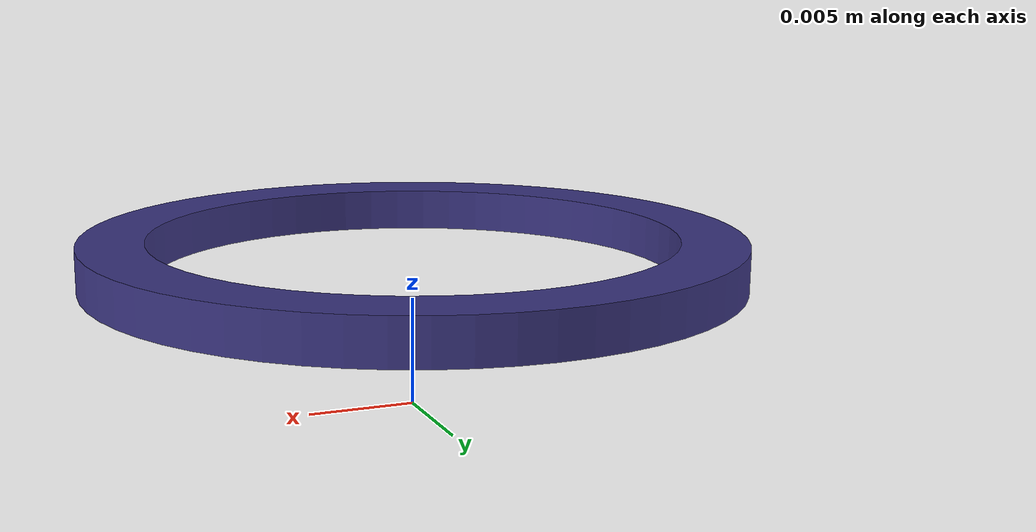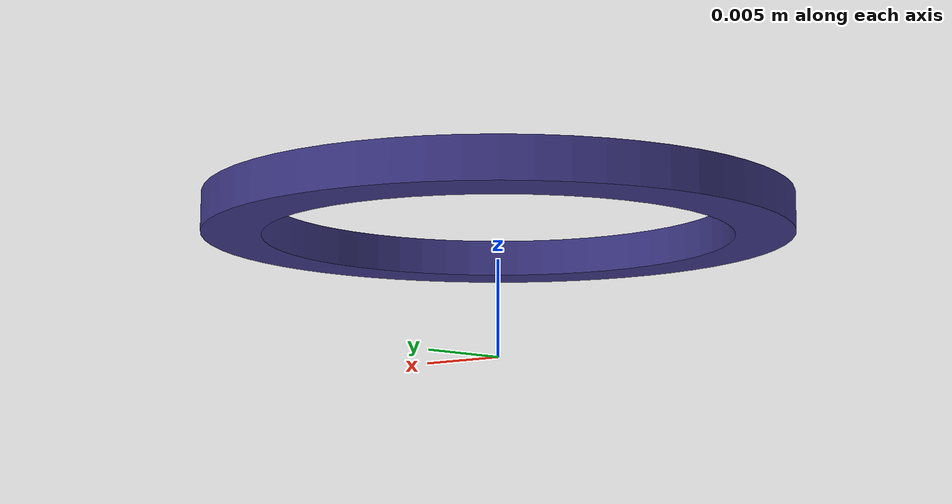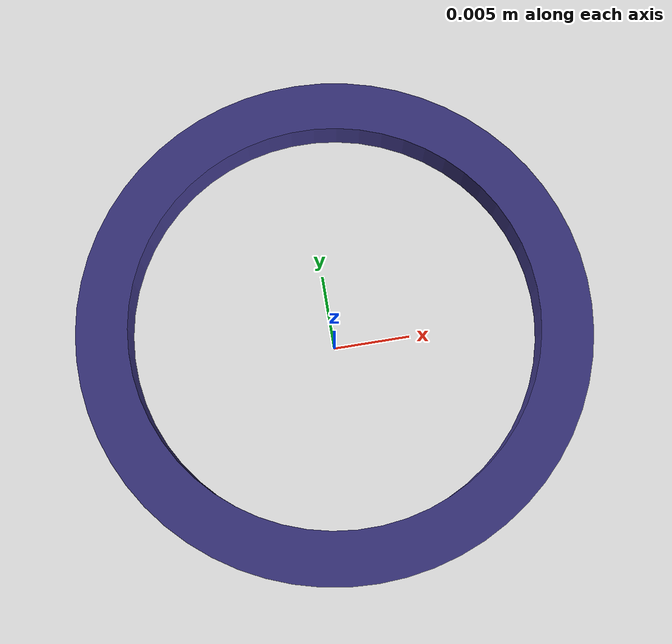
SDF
<?xml version="1.0" ?>
<sdf version='1.4'>
  <model name="circle">
      <static>1</static>
      <link name='link'>
        <visual name='visual'>
            <geometry>
                <mesh>
                    <uri>model://circle/meshes/circle.dae</uri>
                    <scale>1 1 1</scale>
                </mesh>
            </geometry>
        </visual>
      </link>
  </model>
</sdf>
